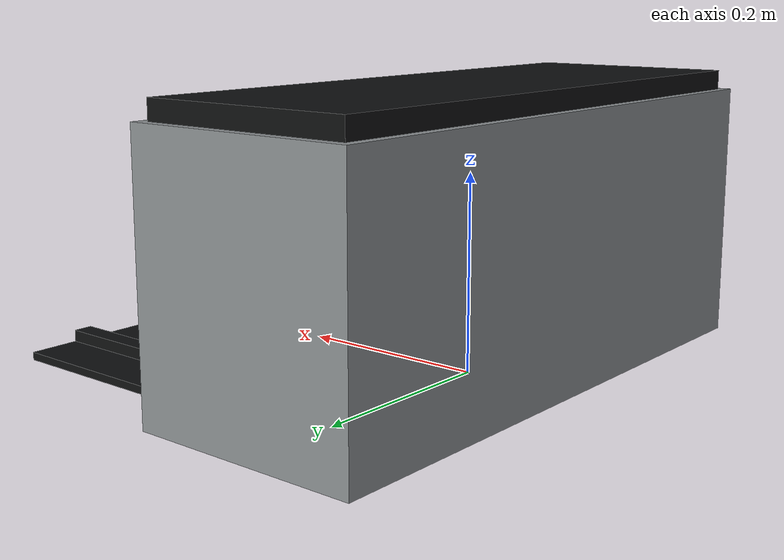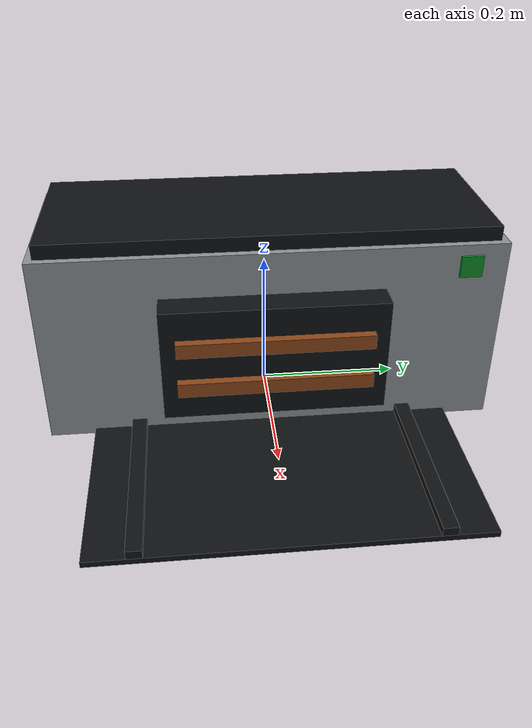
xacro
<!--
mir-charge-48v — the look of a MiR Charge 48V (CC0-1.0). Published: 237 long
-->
<?xml version="1.0"?>
<robot xmlns:xacro="http://www.ros.org/wiki/xacro" name="mir-charge-48v-station">
  <xacro:include filename="../../equipment-common/visual/primitives.xacro"/>
  <xacro:arg name="length" default="0.237"/>
  <xacro:arg name="width" default="0.622"/>
  <xacro:arg name="height" default="0.287"/>
  <xacro:arg name="plate" default="0.25"/>
  <xacro:property name="l" value="$(arg length)"/>
  <xacro:property name="w" value="$(arg width)"/>
  <xacro:property name="h" value="$(arg height)"/>
  <xacro:property name="p" value="$(arg plate)"/>
  <material name="aluminium"><color rgba="0.55 0.57 0.58 1"/></material>
  <material name="dark"><color rgba="0.06 0.065 0.07 1"/></material>
  <material name="copper"><color rgba="0.55 0.28 0.10 1"/></material>
  <material name="led"><color rgba="0.05 0.55 0.15 1"/></material>
  <link name="root"/>
  <xacro:box name="housing" size="${l} ${w} ${h - 0.02}" xyz="0 0 ${(h - 0.02)/2}" mat="aluminium"/>
  <xacro:box name="housing_cap" size="${l - 0.02} ${w - 0.02} 0.02" xyz="0 0 ${h - 0.01}" mat="dark"/>
  <xacro:box name="charging_plate" size="${p} ${w*0.8} 0.008" xyz="${l/2 + p/2} 0 0.004" mat="dark"/>
  <!-- the sloped contact block on the front face, and the two charging bars -->
  <xacro:box name="contact_block" size="0.04 0.30 0.16" xyz="${l/2 + 0.02} 0 ${h*0.45}" mat="dark"/>
  <xacro:box name="contact_upper" size="0.012 0.26 0.02" xyz="${l/2 + 0.046} 0 ${h*0.45 + 0.03}" mat="copper"/>
  <xacro:box name="contact_lower" size="0.012 0.26 0.02" xyz="${l/2 + 0.046} 0 ${h*0.45 - 0.03}" mat="copper"/>
  <xacro:box name="status_led" size="0.004 0.03 0.03" xyz="${l/2 + 0.002} ${w/2 - 0.05} ${h - 0.05}" mat="led"/>
  <!-- guide rails on the plate that centre the robot's contacts -->
  <xacro:box name="plate_lip_l" size="${p} 0.02 0.012" xyz="${l/2 + p/2} ${w*0.3} 0.014" mat="dark"/>
  <xacro:box name="plate_lip_r" size="${p} 0.02 0.012" xyz="${l/2 + p/2} ${-w*0.3} 0.014" mat="dark"/>
</robot>

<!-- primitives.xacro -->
<!-- CC0. Visual-only primitives, each with a stable removable resident name. -->
<robot xmlns:xacro="http://www.ros.org/wiki/xacro">
  <xacro:macro name="box" params="name size xyz mat">
    <link name="${name}"><visual><origin xyz="${xyz}"/>
      <geometry><box size="${size}"/></geometry><material name="${mat}"/>
    </visual></link>
    <joint name="j_${name}" type="fixed"><parent link="root"/><child link="${name}"/></joint>
  </xacro:macro>
  <xacro:macro name="cylinder" params="name radius length xyz rpy mat">
    <link name="${name}"><visual><origin xyz="${xyz}" rpy="${rpy}"/>
      <geometry><cylinder radius="${radius}" length="${length}"/></geometry><material name="${mat}"/>
    </visual></link>
    <joint name="j_${name}" type="fixed"><parent link="root"/><child link="${name}"/></joint>
  </xacro:macro>
  <xacro:macro name="mesh" params="name file xyz mat">
    <link name="${name}"><visual><origin xyz="${xyz}"/>
      <geometry><mesh filename="${file}"/></geometry><material name="${mat}"/>
    </visual></link>
    <joint name="j_${name}" type="fixed"><parent link="root"/><child link="${name}"/></joint>
  </xacro:macro>
</robot>
